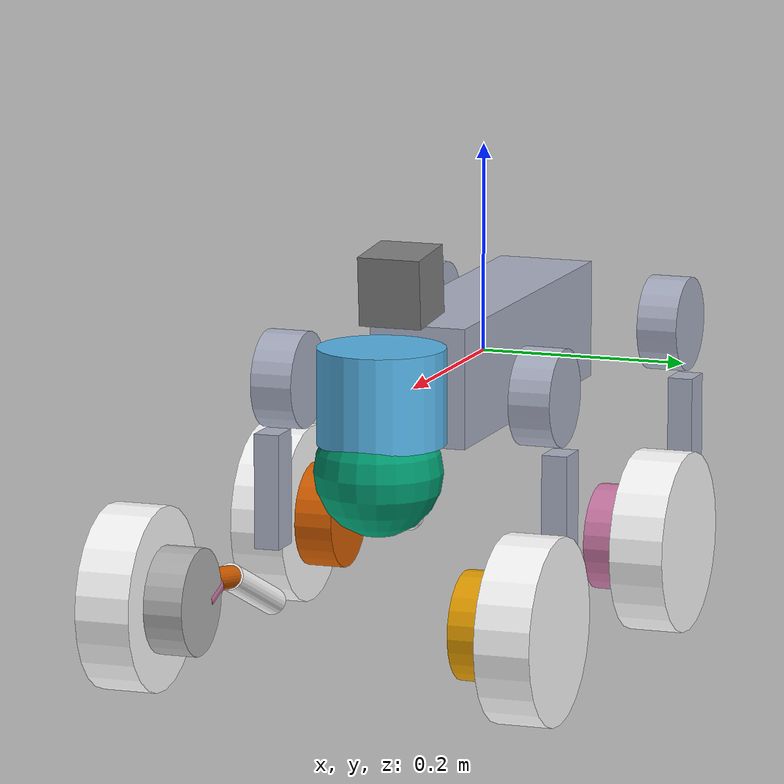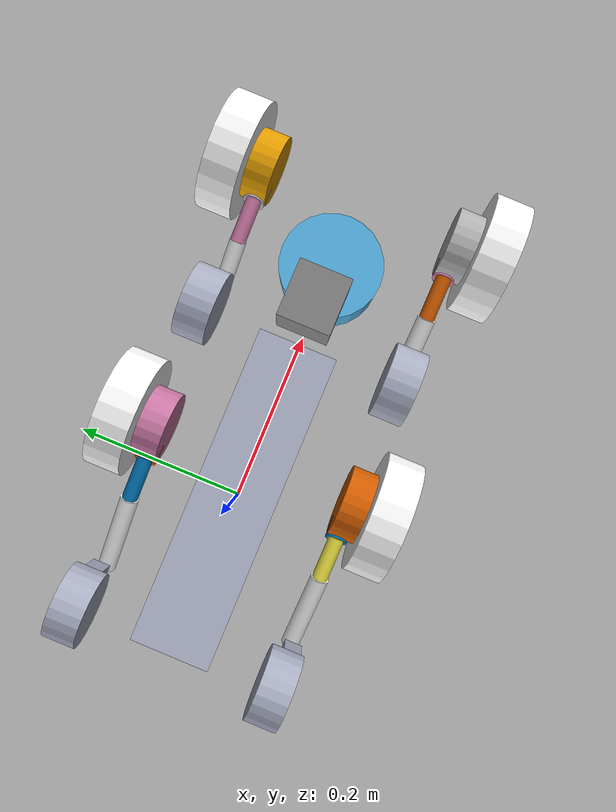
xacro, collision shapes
<?xml version="1.0"?>
<robot name="magi_go2w" xmlns:xacro="http://ros.org/wiki/xacro">

  <!-- Emit the ros2_control + Gazebo blocks (off for a pure-viz description). -->
  <xacro:arg name="sim_gazebo" default="true"/>
  <!-- controller_manager parameters, loaded by the Gazebo system plugin. -->
  <xacro:arg name="controllers_file"
             default="$(find magi_control)/config/magi_controllers.yaml"/>

  <xacro:include filename="$(find magi_description)/urdf/go2w_body.xacro"/>

  <xacro:property name="stance_height" value="0.36"/>
  <link name="base_footprint"/>
  <joint name="base_footprint_joint" type="fixed">
    <origin xyz="0 0 -${stance_height}" rpy="0 0 0"/>
    <parent link="base"/>
    <child link="base_footprint"/>
  </joint>

  <xacro:include filename="$(find magi_description)/urdf/livox_mid360.xacro"/>
  <xacro:livox_mid360 parent="imu" name="livox_mid360"/>

  <xacro:include filename="$(find magi_description)/urdf/go2w_sensors.xacro"/>
  <xacro:magi_front_camera_link parent="base"/>

  <xacro:include filename="$(find magi_description)/urdf/go2w_ros2_control.xacro"/>
  <xacro:include filename="$(find magi_description)/urdf/go2w_gazebo.xacro"/>

  <xacro:if value="$(arg sim_gazebo)">
    <xacro:magi_ros2_control name="MagiGo2WSystem"/>
    <xacro:magi_gazebo controllers_file="$(arg controllers_file)"/>
    <xacro:magi_sensors/>
  </xacro:if>

</robot>

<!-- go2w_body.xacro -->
<robot xmlns:xacro="http://ros.org/wiki/xacro">

  <!-- material palette (derived from the upstream per-visual colors) -->
  <material name="magi_mat_1"><color rgba="0.671705 0.692426 0.77427 1"/></material>
  <material name="magi_mat_2"><color rgba="1 1 1 1"/></material>

  <link name="base">
    <inertial>
      <origin xyz="0.021112 0 -0.005366" rpy="0 0 0" />
      <mass value="6.921" />
      <inertia ixx="0.02448" ixy="0.00012166" ixz="0.0014849" iyy="0.098077" iyz="-3.12E-05" izz="0.107" />
    </inertial>
    <visual>
      <origin xyz="0 0 0" rpy="0 0 0" />
      <geometry>
        <mesh filename="package://magi_description/meshes/base.dae" />
      </geometry>
      <material name="magi_mat_1"><color rgba="0.671705 0.692426 0.77427 1"/></material></visual>
    <collision>
      <origin rpy="0 0 0" xyz="0 0 0" />
      <geometry>
        <box size="0.3762 0.0935 0.114" />
      </geometry>
    </collision>
  </link>
  <link name="Head_upper">
    <inertial>
      <origin xyz="0 0 0" rpy="0 0 0" />
      <mass value="0.001" />
      <inertia ixx="9.6e-06" ixy="0" ixz="0" iyy="9.6e-06" iyz="0" izz="9.6e-06" />
    </inertial>
    <collision>
      <origin xyz="0 0 0" rpy="0 0 0" />
      <geometry>
        <cylinder radius="0.06" length="0.09" />
      </geometry>
    </collision>
  </link>
  <joint name="Head_upper_joint" type="fixed" dont_collapse="true">
    <origin xyz="0.285 0 0.01" rpy="0 0 0" />
    <parent link="base" />
    <child link="Head_upper" />
    <axis xyz="0 0 0" />
  </joint>
  <link name="Head_lower">
    <inertial>
      <origin xyz="0 0 0" rpy="0 0 0" />
      <mass value="0.001" />
      <inertia ixx="9.6e-06" ixy="0" ixz="0" iyy="9.6e-06" iyz="0" izz="9.6e-06" />
    </inertial>
    <collision>
      <origin xyz="0 0 0" rpy="0 0 0" />
      <geometry>
        <sphere radius="0.06" />
      </geometry>
    </collision>
  </link>
  <joint name="Head_lower_joint" type="fixed" dont_collapse="true">
    <origin xyz="0.008 0 -0.07" rpy="0 0 0" />
    <parent link="Head_upper" />
    <child link="Head_lower" />
    <axis xyz="0 0 0" />
  </joint>
  <link name="FL_hip">
    <inertial>
      <origin xyz="-0.0054 0.00194 -0.000105" rpy="0 0 0" />
      <mass value="0.678" />
      <inertia ixx="0.00048" ixy="-3.01E-06" ixz="1.11E-06" iyy="0.000884" iyz="-1.42E-06" izz="0.000596" />
    </inertial>
    <visual>
      <origin xyz="0 0 0" rpy="0 0 0" />
      <geometry>
        <mesh filename="package://magi_description/meshes/hip.dae" />
      </geometry>
      <material name="magi_mat_1"><color rgba="0.671705 0.692426 0.77427 1"/></material></visual>
    <collision>
      <origin rpy="1.5707963267948966 0 0" xyz="0 0.08 0" />
      <geometry>
        <cylinder length="0.04" radius="0.046" />
      </geometry>
    </collision>
  </link>
  <joint name="FL_hip_joint" type="revolute">
    <origin xyz="0.1934 0.0465 0" rpy="0 0 0" />
    <parent link="base" />
    <child link="FL_hip" />
    <axis xyz="1 0 0" />
    <limit lower="-1.0472" upper="1.0472" effort="23.7" velocity="30.1" />
  </joint>
  <link name="FL_thigh">
    <inertial>
      <origin xyz="-0.00374 -0.0223 -0.0327" rpy="0 0 0" />
      <mass value="1.152" />
      <inertia ixx="0.00584" ixy="8.72E-05" ixz="-0.000289" iyy="0.0058" iyz="0.000808" izz="0.00103" />
    </inertial>
    <visual>
      <origin xyz="0 0 0" rpy="0 0 0" />
      <geometry>
        <mesh filename="package://magi_description/meshes/thigh.dae" />
      </geometry>
      <material name="magi_mat_1"><color rgba="0.671705 0.692426 0.77427 1"/></material></visual>
    <collision>
      <origin rpy="0 1.5707963267948966 0" xyz="0 0 -0.1065" />
      <geometry>
        <box size="0.11 0.0245 0.034" />
      </geometry>
    </collision>
  </link>
  <joint name="FL_thigh_joint" type="revolute">
    <origin xyz="0 0.0955 0" rpy="0 0 0" />
    <parent link="FL_hip" />
    <child link="FL_thigh" />
    <axis xyz="0 1 0" />
    <limit lower="-1.5707963267948966" upper="3.4907" effort="23.7" velocity="30.1" />
  </joint>
  <link name="FL_calf">
    <inertial>
      <origin xyz="0.00548 -0.000975 -0.115" rpy="0 0 0" />
      <mass value="0.154" />
      <inertia ixx="0.00108" ixy="3.4E-07" ixz="1.72E-05" iyy="0.0011" iyz="8.28E-06" izz="3.29E-05" />
    </inertial>
    <visual>
      <origin xyz="0 0 0" rpy="0 0 0" />
      <geometry>
        <mesh filename="package://magi_description/meshes/calf.stl" />
      </geometry>
      <material name="magi_mat_2"><color rgba="1 1 1 1"/></material></visual>
    <collision>
      <origin rpy="0 -0.21 0" xyz="0.008 0 -0.06" />
      <geometry>
        <cylinder length="0.12" radius="0.012" />
      </geometry>
    </collision>
  </link>
  <joint name="FL_calf_joint" type="revolute">
    <origin xyz="0 0 -0.213" rpy="0 0 0" />
    <parent link="FL_thigh" />
    <child link="FL_calf" />
    <axis xyz="0 1 0" />
    <limit lower="-2.7227" upper="-0.83776" effort="35.55" velocity="20.07" />
  </joint>
  <link name="FL_calflower">
    <collision>
      <origin rpy="0 0 0" xyz="0 0 0" />
      <geometry>
        <cylinder length="0.065" radius="0.011" />
      </geometry>
    </collision>
  </link>
  <joint name="FL_calflower_joint" type="fixed">
    <origin xyz="0.020 0 -0.148" rpy="0 0.05 0" />
    <parent link="FL_calf" />
    <child link="FL_calflower" />
    <axis xyz="0 0 0" />
  </joint>
  <link name="FL_calflower1">
    <collision>
      <origin rpy="0 0 0" xyz="0 0 0" />
      <geometry>
        <cylinder length="0.03" radius="0.0155" />
      </geometry>
    </collision>
  </link>
  <joint name="FL_calflower1_joint" type="fixed">
    <origin xyz="-0.01 0 -0.04" rpy="0 0.48 0" />
    <parent link="FL_calflower" />
    <child link="FL_calflower1" />
    <axis xyz="0 0 0" />
  </joint>

  <link name="FL_foot_motor">
    <inertial>
      <origin xyz="0 0.0 0" rpy="0 0 0" />
      <mass value="0.646" />
      <inertia ixx="0.001" ixy="0" ixz="0" iyy="0.0016" iyz="0" izz="0.001" />
    </inertial>
    <collision>
      <origin rpy="1.5707963267948966 0 0" xyz="0 0 0" />
      <geometry>
        <cylinder length="0.05" radius="0.05" />
      </geometry>
    </collision>
  </link>

  <joint name="FL_foot_motor_joint" type="fixed">
    <origin xyz="-0.00 0.01 -0.2264" rpy="0 0.0 0" />
    <parent link="FL_calf" />
    <child link="FL_foot_motor" />
    <axis xyz="0 0 0" />
  </joint>

  <link name="FL_foot">
    <inertial>
      <origin xyz="0 0.06 0" rpy="0 0 0" />
      <mass value="0.520" />
      <inertia ixx="0.0007" ixy="0" ixz="0" iyy="0.0012" iyz="0" izz="0.0007" />
    </inertial>
    <visual>
      <origin xyz="0 0 0" rpy="0 0 0" />
      <geometry>
        <mesh filename="package://magi_description/meshes/left_wheel.dae" />
      </geometry>
      <material name="magi_mat_2"><color rgba="1 1 1 1"/></material></visual>
    <collision>
      <origin rpy="1.5707963267948966 0 0" xyz="0 0.0481 0" />
      <geometry>
        <cylinder radius="0.086" length="0.0518" />
      </geometry>
    </collision>
  </link>
  <joint name="FL_foot_joint" type="continuous">
    <origin xyz="0 0 -0.2264" rpy="0 0 0" />
    <parent link="FL_calf" />
    <child link="FL_foot" />
    <axis xyz="0 1 0" />

      <limit effort="23.7" velocity="30.1" />
  </joint>

  <link name="FR_hip">
    <inertial>
      <origin xyz="-0.0054 -0.00194 -0.000105" rpy="0 0 0" />
      <mass value="0.678" />
      <inertia ixx="0.00048" ixy="3.01E-06" ixz="1.11E-06" iyy="0.000884" iyz="1.42E-06" izz="0.000596" />
    </inertial>
    <visual>
      <origin xyz="0 0 0" rpy="3.1415 0 0" />
      <geometry>
        <mesh filename="package://magi_description/meshes/hip.dae" />
      </geometry>
      <material name="magi_mat_1"><color rgba="0.671705 0.692426 0.77427 1"/></material></visual>
    <collision>
      <origin rpy="1.5707963267948966 0 0" xyz="0 -0.08 0" />
      <geometry>
        <cylinder length="0.04" radius="0.046" />
      </geometry>
    </collision>
  </link>
  <joint name="FR_hip_joint" type="revolute">
    <origin xyz="0.1934 -0.0465 0" rpy="0 0 0" />
    <parent link="base" />
    <child link="FR_hip" />
    <axis xyz="1 0 0" />
    <limit lower="-1.0472" upper="1.0472" effort="23.7" velocity="30.1" />
  </joint>
  <link name="FR_thigh">
    <inertial>
      <origin xyz="-0.00374 0.0223 -0.0327" rpy="0 0 0" />
      <mass value="1.152" />
      <inertia ixx="0.00584" ixy="-8.72E-05" ixz="-0.000289" iyy="0.0058" iyz="-0.000808" izz="0.00103" />
    </inertial>
    <visual>
      <origin xyz="0 0 0" rpy="0 0 0" />
      <geometry>
        <mesh filename="package://magi_description/meshes/thigh_mirror.dae" />
      </geometry>
      <material name="magi_mat_1"><color rgba="0.671705 0.692426 0.77427 1"/></material></visual>
    <collision>
      <origin rpy="0 1.5707963267948966 0" xyz="0 0 -0.1065" />
      <geometry>
        <box size="0.11 0.0245 0.034" />
      </geometry>
    </collision>
  </link>
  <joint name="FR_thigh_joint" type="revolute">
    <origin xyz="0 -0.0955 0" rpy="0 0 0" />
    <parent link="FR_hip" />
    <child link="FR_thigh" />
    <axis xyz="0 1 0" />
    <limit lower="-1.5707963267948966" upper="3.4907" effort="23.7" velocity="30.1" />
  </joint>
  <link name="FR_calf">
    <inertial>
      <origin xyz="0.00548 0.000975 -0.115" rpy="0 0 0" />
      <mass value="0.154" />
      <inertia ixx="0.00108" ixy="-3.4E-07" ixz="1.72E-05" iyy="0.0011" iyz="-8.28E-06" izz="3.29E-05" />
    </inertial>
    <visual>
      <origin xyz="0 0 0" rpy="0 0 0" />
      <geometry>
        <mesh filename="package://magi_description/meshes/calf_mirror.stl" />
      </geometry>
      <material name="magi_mat_2"><color rgba="1 1 1 1"/></material></visual>
    <collision>
      <origin rpy="0 -0.2 0" xyz="0.01 0 -0.06" />
      <geometry>
        <cylinder length="0.12" radius="0.013" />
      </geometry>
    </collision>
  </link>
  <joint name="FR_calf_joint" type="revolute">
    <origin xyz="0 0 -0.213" rpy="0 0 0" />
    <parent link="FR_thigh" />
    <child link="FR_calf" />
    <axis xyz="0 1 0" />
    <limit lower="-2.7227" upper="-0.83776" effort="35.55" velocity="20.07" />
  </joint>
  <link name="FR_calflower">
    <collision>
      <origin rpy="0 0 0" xyz="0 0 0" />
      <geometry>
        <cylinder length="0.065" radius="0.011" />
      </geometry>
    </collision>
  </link>
  <joint name="FR_calflower_joint" type="fixed">
    <origin xyz="0.020 0 -0.148" rpy="0 0.05 0" />
    <parent link="FR_calf" />
    <child link="FR_calflower" />
    <axis xyz="0 0 0" />
  </joint>
  <link name="FR_calflower1">
    <collision>
      <origin rpy="0 0 0" xyz="0 0 0" />
      <geometry>
        <cylinder length="0.03" radius="0.0155" />
      </geometry>
    </collision>
  </link>
  <joint name="FR_calflower1_joint" type="fixed">
    <origin xyz="-0.01 0 -0.04" rpy="0 0.48 0" />
    <parent link="FR_calflower" />
    <child link="FR_calflower1" />
    <axis xyz="0 0 0" />
  </joint>

  <link name="FR_foot_motor">
    <inertial>
      <origin xyz="0 0.0 0" rpy="0 0 0" />
      <mass value="0.646" />
      <inertia ixx="0.001" ixy="0" ixz="0" iyy="0.0016" iyz="0" izz="0.001" />
    </inertial>
    <collision>
      <origin rpy="1.5707963267948966 0 0" xyz="0 0 0" />
      <geometry>
        <cylinder length="0.05" radius="0.05" />
      </geometry>
    </collision>
  </link>

  <joint name="FR_foot_motor_joint" type="fixed">
    <origin xyz="0.0 -0.01 -0.2264" rpy="0 0.0 0" />
    <parent link="FR_calf" />
    <child link="FR_foot_motor" />
    <axis xyz="0 0 0" />
  </joint>

  <link name="FR_foot">
    <inertial>
      <origin xyz="0 -0.06 0" rpy="0 0 0" />
      <mass value="0.520" />
      <inertia ixx="0.0007" ixy="0" ixz="0" iyy="0.0012" iyz="0" izz="0.0007" />
    </inertial>
    <visual>
      <origin xyz="0 0 0" rpy="0 0 0" />
      <geometry>
        <mesh filename="package://magi_description/meshes/right_wheel.dae" />
      </geometry>
      <material name="magi_mat_2"><color rgba="1 1 1 1"/></material></visual>
    <collision>
      <origin rpy="1.5707963267948966 0 0" xyz="0 -0.0481 0" />
      <geometry>
        <cylinder radius="0.086" length="0.0518" />
      </geometry>
    </collision>
  </link>
  <joint name="FR_foot_joint" type="continuous">
    <origin xyz="0 0 -0.2264" rpy="0 0 0" />
    <parent link="FR_calf" />
    <child link="FR_foot" />
    <axis xyz="0 1 0" />
      <limit effort="23.7" velocity="30.1" />
  </joint>

  <link name="RL_hip">
    <inertial>
      <origin xyz="0.0054 0.00194 -0.000105" rpy="0 0 0" />
      <mass value="0.678" />
      <inertia ixx="0.00048" ixy="3.01E-06" ixz="-1.11E-06" iyy="0.000884" iyz="-1.42E-06" izz="0.000596" />
    </inertial>
    <visual>
      <origin xyz="0 0 0" rpy="0 3.1415 0" />
      <geometry>
        <mesh filename="package://magi_description/meshes/hip.dae" />
      </geometry>
      <material name="magi_mat_1"><color rgba="0.671705 0.692426 0.77427 1"/></material></visual>
    <collision>
      <origin rpy="1.5707963267948966 0 0" xyz="0 0.08 0" />
      <geometry>
        <cylinder length="0.04" radius="0.046" />
      </geometry>
    </collision>
  </link>
  <joint name="RL_hip_joint" type="revolute">
    <origin xyz="-0.1934 0.0465 0" rpy="0 0 0" />
    <parent link="base" />
    <child link="RL_hip" />
    <axis xyz="1 0 0" />
    <limit lower="-1.0472" upper="1.0472" effort="23.7" velocity="30.1" />
  </joint>
  <link name="RL_thigh">
    <inertial>
      <origin xyz="-0.00374 -0.0223 -0.0327" rpy="0 0 0" />
      <mass value="1.152" />
      <inertia ixx="0.00584" ixy="8.72E-05" ixz="-0.000289" iyy="0.0058" iyz="0.000808" izz="0.00103" />
    </inertial>
    <visual>
      <origin xyz="0 0 0" rpy="0 0 0" />
      <geometry>
        <mesh filename="package://magi_description/meshes/thigh.dae" />
      </geometry>
      <material name="magi_mat_1"><color rgba="0.671705 0.692426 0.77427 1"/></material></visual>
    <collision>
      <origin rpy="0 1.5707963267948966 0" xyz="0 0 -0.1065" />
      <geometry>
        <box size="0.11 0.0245 0.034" />
      </geometry>
    </collision>
  </link>
  <joint name="RL_thigh_joint" type="revolute">
    <origin xyz="0 0.0955 0" rpy="0 0 0" />
    <parent link="RL_hip" />
    <child link="RL_thigh" />
    <axis xyz="0 1 0" />
    <limit lower="-0.5236" upper="4.5379" effort="23.7" velocity="30.1" />
  </joint>
  <link name="RL_calf">
    <inertial>
      <origin xyz="0.00548 -0.000975 -0.115" rpy="0 0 0" />
      <mass value="0.154" />
      <inertia ixx="0.00108" ixy="3.4E-07" ixz="1.72E-05" iyy="0.0011" iyz="8.28E-06" izz="3.29E-05" />
    </inertial>
    <visual>
      <origin xyz="0 0 0" rpy="0 0 0" />
      <geometry>
        <mesh filename="package://magi_description/meshes/calf.stl" />
      </geometry>
      <material name="magi_mat_2"><color rgba="1 1 1 1"/></material></visual>
    <collision>
      <origin rpy="0 -0.2 0" xyz="0.01 0 -0.06" />
      <geometry>
        <cylinder length="0.12" radius="0.013" />
      </geometry>
    </collision>
  </link>
  <joint name="RL_calf_joint" type="revolute">
    <origin xyz="0 0 -0.213" rpy="0 0 0" />
    <parent link="RL_thigh" />
    <child link="RL_calf" />
    <axis xyz="0 1 0" />
    <limit lower="-2.7227" upper="-0.83776" effort="35.55" velocity="20.07" />
  </joint>
  <link name="RL_calflower">
    <collision>
      <origin rpy="0 0 0" xyz="0 0 0" />
      <geometry>
        <cylinder length="0.065" radius="0.011" />
      </geometry>
    </collision>
  </link>
  <joint name="RL_calflower_joint" type="fixed">
    <origin xyz="0.020 0 -0.148" rpy="0 0.05 0" />
    <parent link="RL_calf" />
    <child link="RL_calflower" />
    <axis xyz="0 0 0" />
  </joint>
  <link name="RL_calflower1">
    <collision>
      <origin rpy="0 0 0" xyz="0 0 0" />
      <geometry>
        <cylinder length="0.03" radius="0.0155" />
      </geometry>
    </collision>
  </link>
  <joint name="RL_calflower1_joint" type="fixed">
    <origin xyz="-0.01 0 -0.04" rpy="0 0.48 0" />
    <parent link="RL_calflower" />
    <child link="RL_calflower1" />
    <axis xyz="0 0 0" />
  </joint>

  <link name="RL_foot_motor">
  <inertial>
    <origin xyz="0 0.0 0" rpy="0 0 0" />
    <mass value="0.646" />
    <inertia ixx="0.001" ixy="0" ixz="0" iyy="0.0016" iyz="0" izz="0.001" />
  </inertial>
  <collision>
    <origin rpy="1.5707963267948966 0 0" xyz="0 0 0" />
    <geometry>
      <cylinder length="0.05" radius="0.05" />
    </geometry>
  </collision>
</link>

<joint name="RL_foot_motor_joint" type="fixed">
  <origin xyz="0.00 0.01 -0.2264" rpy="0 0.0 0" />
  <parent link="RL_calf" />
  <child link="RL_foot_motor" />
  <axis xyz="0 0 0" />
</joint>

  <link name="RL_foot">
    <inertial>
      <origin xyz="0 0.06 0" rpy="0 0 0" />
      <mass value="0.520" />
      <inertia ixx="0.0007" ixy="0" ixz="0" iyy="0.0012" iyz="0" izz="0.0007" />
    </inertial>
    <visual>
      <origin xyz="0 0 0" rpy="0 0 0" />
      <geometry>
        <mesh filename="package://magi_description/meshes/left_wheel.dae" />
      </geometry>
      <material name="magi_mat_2"><color rgba="1 1 1 1"/></material></visual>
    <collision>
      <origin rpy="1.5707963267948966 0 0" xyz="0 0.0481 0" />
      <geometry>
        <cylinder radius="0.086" length="0.0518" />
      </geometry>
    </collision>
  </link>
  <joint name="RL_foot_joint" type="continuous">
    <origin xyz="0.0 0 -0.2264" rpy="0 0 0" />
    <parent link="RL_calf" />
    <child link="RL_foot" />
    <axis xyz="0 1 0" />
      <limit effort="23.7" velocity="30.1" />
  </joint>

  <link name="RR_hip">
    <inertial>
      <origin xyz="0.0054 -0.00194 -0.000105" rpy="0 0 0" />
      <mass value="0.678" />
      <inertia ixx="0.00048" ixy="-3.01E-06" ixz="-1.11E-06" iyy="0.000884" iyz="1.42E-06" izz="0.000596" />
    </inertial>
    <visual>
      <origin xyz="0 0 0" rpy="3.1415 3.1415 0" />
      <geometry>
        <mesh filename="package://magi_description/meshes/hip.dae" />
      </geometry>
      <material name="magi_mat_1"><color rgba="0.671705 0.692426 0.77427 1"/></material></visual>
    <collision>
      <origin rpy="1.5707963267948966 0 0" xyz="0 -0.08 0" />
      <geometry>
        <cylinder length="0.04" radius="0.046" />
      </geometry>
    </collision>
  </link>
  <joint name="RR_hip_joint" type="revolute">
    <origin xyz="-0.1934 -0.0465 0" rpy="0 0 0" />
    <parent link="base" />
    <child link="RR_hip" />
    <axis xyz="1 0 0" />
    <limit lower="-1.0472" upper="1.0472" effort="23.7" velocity="30.1" />
  </joint>
  <link name="RR_thigh">
    <inertial>
      <origin xyz="-0.00374 0.0223 -0.0327" rpy="0 0 0" />
      <mass value="1.152" />
      <inertia ixx="0.00584" ixy="-8.72E-05" ixz="-0.000289" iyy="0.0058" iyz="-0.000808" izz="0.00103" />
    </inertial>
    <visual>
      <origin xyz="0 0 0" rpy="0 0 0" />
      <geometry>
        <mesh filename="package://magi_description/meshes/thigh_mirror.dae" />
      </geometry>
      <material name="magi_mat_1"><color rgba="0.671705 0.692426 0.77427 1"/></material></visual>
    <collision>
      <origin rpy="0 1.5707963267948966 0" xyz="0 0 -0.1065" />
      <geometry>
        <box size="0.11 0.0245 0.034" />
      </geometry>
    </collision>
  </link>
  <joint name="RR_thigh_joint" type="revolute">
    <origin xyz="0 -0.0955 0" rpy="0 0 0" />
    <parent link="RR_hip" />
    <child link="RR_thigh" />
    <axis xyz="0 1 0" />
    <limit lower="-0.5236" upper="4.5379" effort="23.7" velocity="30.1" />
  </joint>
  <link name="RR_calf">
    <inertial>
      <origin xyz="0.00548 0.000975 -0.115" rpy="0 0 0" />
      <mass value="0.154" />
      <inertia ixx="0.00108" ixy="-3.4E-07" ixz="1.72E-05" iyy="0.0011" iyz="-8.28E-06" izz="3.29E-05" />
    </inertial>
    <visual>
      <origin xyz="0 0 0" rpy="0 0 0" />
      <geometry>
        <mesh filename="package://magi_description/meshes/calf_mirror.stl" />
      </geometry>
      <material name="magi_mat_2"><color rgba="1 1 1 1"/></material></visual>
    <collision>
      <origin rpy="0 -0.2 0" xyz="0.01 0 -0.06" />
      <geometry>
        <cylinder length="0.12" radius="0.013" />
      </geometry>
    </collision>
  </link>
  <joint name="RR_calf_joint" type="revolute">
    <origin xyz="0 0 -0.213" rpy="0 0 0" />
    <parent link="RR_thigh" />
    <child link="RR_calf" />
    <axis xyz="0 1 0" />
    <limit lower="-2.7227" upper="-0.83776" effort="35.55" velocity="20.07" />
  </joint>
  <link name="RR_calflower">
    <collision>
      <origin rpy="0 0 0" xyz="0 0 0" />
      <geometry>
        <cylinder length="0.065" radius="0.011" />
      </geometry>
    </collision>
  </link>
  <joint name="RR_calflower_joint" type="fixed">
    <origin xyz="0.020 0 -0.148" rpy="0 0.05 0" />
    <parent link="RR_calf" />
    <child link="RR_calflower" />
    <axis xyz="0 0 0" />
  </joint>
  <link name="RR_calflower1">
    <collision>
      <origin rpy="0 0 0" xyz="0 0 0" />
      <geometry>
        <cylinder length="0.03" radius="0.0155" />
      </geometry>
    </collision>
  </link>
  <joint name="RR_calflower1_joint" type="fixed">
    <origin xyz="-0.01 0 -0.04" rpy="0 0.48 0" />
    <parent link="RR_calflower" />
    <child link="RR_calflower1" />
    <axis xyz="0 0 0" />
  </joint>

  <link name="RR_foot_motor">
  <inertial>
    <origin xyz="0 0.0 0" rpy="0 0 0" />
    <mass value="0.646" />
    <inertia ixx="0.001" ixy="0" ixz="0" iyy="0.0016" iyz="0" izz="0.001" />
  </inertial>
  <collision>
    <origin rpy="1.5707963267948966 0 0" xyz="0 0 0" />
    <geometry>
      <cylinder length="0.05" radius="0.05" />
    </geometry>
  </collision>
</link>

<joint name="RR_foot_motor_joint" type="fixed">
  <origin xyz="0.00 -0.01 -0.2264" rpy="0 0.0 0" />
  <parent link="RR_calf" />
  <child link="RR_foot_motor" />
  <axis xyz="0 0 0" />
</joint>

  <link name="RR_foot">
    <inertial>
      <origin xyz="0 -0.06 0" rpy="0 0 0" />
      <mass value="0.520" />
      <inertia ixx="0.0007" ixy="0" ixz="0" iyy="0.0012" iyz="0" izz="0.0007" />
    </inertial>
    <visual>
      <origin xyz="0 0 0" rpy="0 0 0" />
      <geometry>
        <mesh filename="package://magi_description/meshes/right_wheel.dae" />
      </geometry>
      <material name="magi_mat_2"><color rgba="1 1 1 1"/></material></visual>
    <collision>
      <origin rpy="1.5707963267948966 0 0" xyz="0 -0.0481 0" />
      <geometry>
        <cylinder radius="0.086" length="0.0518" />
      </geometry>
    </collision>
  </link>
  <joint name="RR_foot_joint" type="continuous">
    <origin xyz="-0.0 0 -0.2264" rpy="0 0 0" />
    <parent link="RR_calf" />
    <child link="RR_foot" />
    <axis xyz="0 1 0" />
      <limit effort="23.7" velocity="30.1" />
  </joint>
  <link name="imu">
    <inertial>
      <origin xyz="0 0 0" rpy="0 0 0" />
      <mass value="0" />
      <inertia ixx="0" ixy="0" ixz="0" iyy="0" iyz="0" izz="0" />
    </inertial>
  </link>
  <joint name="imu_joint" type="fixed">
    <origin xyz="-0.02557 0 0.04232" rpy="0 0 0" />
    <parent link="base" />
    <child link="imu" />
    <axis xyz="0 0 0" />
  </joint>
  <link name="radar">
    <inertial>
      <origin xyz="0 0 0" rpy="0 0 0" />
      <mass value="0" />
      <inertia ixx="0" ixy="0" ixz="0" iyy="0" iyz="0" izz="0" />
    </inertial>
  </link>
  <joint name="radar_joint" type="fixed">
    <origin xyz="0.28945 0 -0.046825" rpy="0 2.8782 0" />
    <parent link="base" />
    <child link="radar" />
    <axis xyz="0 0 0" />
  </joint>

</robot>

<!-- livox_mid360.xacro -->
<robot xmlns:xacro="http://ros.org/wiki/xacro">

  <xacro:macro name="livox_mid360" params="parent:=imu name:=livox_mid360">

    <!-- LiDAR Base Link (visual/collision) -->
    <link name="${name}_base">
      <inertial>
        <origin xyz="0 0 0" rpy="0 0 0"/>
        <mass value="0.265"/>  <!-- MID-360 actual weight: ~265g -->
        <inertia ixx="0.0001" ixy="0" ixz="0"
                 iyy="0.0001" iyz="0"
                 izz="0.0001"/>
      </inertial>

      <visual>
        <origin xyz="0 0 0" rpy="1.5708 0 3.14159"/>
        <geometry>
          <mesh filename="package://magi_description/meshes/mid-360.dae" scale="0.001 0.001 0.001"/>
        </geometry>
        <material name="livox_gray">
          <color rgba="0.5 0.5 0.5 1.0"/>
        </material>
      </visual>

      <collision>
        <origin xyz="0 0 0" rpy="1.5708 0 3.14159"/>
        <geometry>
          <!-- Livox publishes the MID-360 as 65 x 65 x 60 mm. Upstream had
               86 x 86 x 42 here, which is 21 mm too wide and 18 mm too short. -->
          <box size="0.065 0.065 0.060"/>
        </geometry>
      </collision>
    </link>

    <!-- Joint from parent (typically IMU) to LiDAR base -->
    <joint name="${name}_base_joint" type="fixed">
      <parent link="${parent}"/>
      <child link="${name}_base"/>
      <origin xyz="0.2580 0 0.0613" rpy="0 0.08 0"/>
    </joint>

    <!-- LiDAR Optical Frame (sensor frame for point cloud) -->
    <link name="${name}">
      <inertial>
        <origin xyz="0 0 0" rpy="0 0 0"/>
        <mass value="0.001"/>
        <inertia ixx="0.000001" ixy="0" ixz="0"
                 iyy="0.000001" iyz="0"
                 izz="0.000001"/>
      </inertial>
    </link>

    <!-- Joint from base to optical frame -->
    <joint name="${name}_optical_joint" type="fixed">
      <parent link="${name}_base"/>
      <child link="${name}"/>
      <!--
        No additional transform needed - optical frame at sensor origin
        Livox drivers will publish point cloud in this frame
      -->
      <origin xyz="0 0 0" rpy="0 0 0"/>
    </joint>

  </xacro:macro>

</robot>

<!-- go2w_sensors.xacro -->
<robot xmlns:xacro="http://ros.org/wiki/xacro">

  <xacro:macro name="magi_front_camera_link" params="parent">
    <link name="front_camera">
      <inertial>
        <origin xyz="0 0 0" rpy="0 0 0"/>
        <mass value="0.001"/>
        <inertia ixx="1e-6" ixy="0" ixz="0" iyy="1e-6" iyz="0" izz="1e-6"/>
      </inertial>
    </link>
    <joint name="front_camera_joint" type="fixed">
      <origin xyz="0.2915 0 0.01" rpy="0 0 0"/>
      <parent link="${parent}"/>
      <child link="front_camera"/>
      <axis xyz="0 0 0"/>
    </joint>

    <link name="front_camera_optical"/>
    <joint name="front_camera_optical_joint" type="fixed">
      <origin xyz="0 0 0" rpy="-1.5707963267948966 0 -1.5707963267948966"/>
      <parent link="front_camera"/>
      <child link="front_camera_optical"/>
      <axis xyz="0 0 0"/>
    </joint>
  </xacro:macro>

  <xacro:macro name="magi_lidar" params="link:=livox_mid360 topic:=lidar">
    <gazebo reference="${link}">
      <sensor name="livox_mid360" type="gpu_lidar">
        <always_on>1</always_on>
        <update_rate>10</update_rate>
        <topic>${topic}</topic>
        <gz_frame_id>${link}</gz_frame_id>
        <lidar>
          <scan>
            <horizontal>
              <samples>720</samples>
              <resolution>1</resolution>
              <min_angle>-3.141592653589793</min_angle>
              <max_angle>3.141592653589793</max_angle>
            </horizontal>
            <vertical>
              <samples>32</samples>
              <resolution>1</resolution>
              <!-- -7 deg .. +52 deg -->
              <min_angle>-0.12217304763960307</min_angle>
              <max_angle>0.9075712110370513</max_angle>
            </vertical>
          </scan>
          <range>
            <min>0.1</min>
            <max>40.0</max>
            <resolution>0.01</resolution>
          </range>
          <noise>
            <type>gaussian</type>
            <mean>0.0</mean>
            <!-- datasheet range precision is <= 2 cm at 10 m -->
            <stddev>0.02</stddev>
          </noise>
        </lidar>
      </sensor>
    </gazebo>
  </xacro:macro>

  <xacro:macro name="magi_camera" params="link:=front_camera topic:=front_camera/image">
    <gazebo reference="${link}">
      <sensor name="front_camera" type="camera">
        <always_on>1</always_on>
        <update_rate>30</update_rate>
        <topic>${topic}</topic>
        <gz_frame_id>front_camera_optical</gz_frame_id>
        <camera>
          <horizontal_fov>2.0943951023931953</horizontal_fov>
          <image>
            <width>1280</width>
            <height>720</height>
            <format>R8G8B8</format>
          </image>
          <clip>
            <near>0.05</near>
            <far>100.0</far>
          </clip>
          <noise>
            <type>gaussian</type>
            <mean>0.0</mean>
            <stddev>0.005</stddev>
          </noise>
        </camera>
      </sensor>
    </gazebo>
  </xacro:macro>

  <xacro:macro name="magi_foot_force" params="prefix">
    <gazebo reference="${prefix}_foot_joint">
      <sensor name="${prefix}_foot_force" type="force_torque">
        <always_on>1</always_on>
        <update_rate>200</update_rate>
        <topic>foot_force/${prefix}</topic>
        <gz_frame_id>${prefix}_calf</gz_frame_id>
        <force_torque>
          <frame>parent</frame>
          <measure_direction>parent_to_child</measure_direction>
        </force_torque>
      </sensor>
    </gazebo>
  </xacro:macro>

  <xacro:macro name="magi_imu" params="link:=imu topic:=imu">
    <gazebo reference="${link}">
      <sensor name="imu_sensor" type="imu">
        <always_on>1</always_on>
        <update_rate>200</update_rate>
        <topic>${topic}</topic>
        <gz_frame_id>${link}</gz_frame_id>
        <imu>
          <angular_velocity>
            <xacro:magi_imu_axis axis="x" stddev="2e-4" bias_mean="7.5e-6" bias_stddev="8e-7"/>
            <xacro:magi_imu_axis axis="y" stddev="2e-4" bias_mean="7.5e-6" bias_stddev="8e-7"/>
            <xacro:magi_imu_axis axis="z" stddev="2e-4" bias_mean="7.5e-6" bias_stddev="8e-7"/>
          </angular_velocity>
          <linear_acceleration>
            <xacro:magi_imu_axis axis="x" stddev="1.7e-2" bias_mean="0.1" bias_stddev="0.001"/>
            <xacro:magi_imu_axis axis="y" stddev="1.7e-2" bias_mean="0.1" bias_stddev="0.001"/>
            <xacro:magi_imu_axis axis="z" stddev="1.7e-2" bias_mean="0.1" bias_stddev="0.001"/>
          </linear_acceleration>
        </imu>
      </sensor>
    </gazebo>
  </xacro:macro>

  <xacro:macro name="magi_imu_axis" params="axis stddev bias_mean bias_stddev">
    <xacro:element xacro:name="${axis}">
      <noise type="gaussian">
        <mean>0.0</mean>
        <stddev>${stddev}</stddev>
        <bias_mean>${bias_mean}</bias_mean>
        <bias_stddev>${bias_stddev}</bias_stddev>
      </noise>
    </xacro:element>
  </xacro:macro>

  <!-- Everything at once. -->
  <xacro:macro name="magi_sensors" params="">
    <xacro:magi_imu/>
    <xacro:magi_lidar/>
    <xacro:magi_camera/>
    <xacro:magi_foot_force prefix="FL"/>
    <xacro:magi_foot_force prefix="FR"/>
    <xacro:magi_foot_force prefix="RL"/>
    <xacro:magi_foot_force prefix="RR"/>
  </xacro:macro>

</robot>
